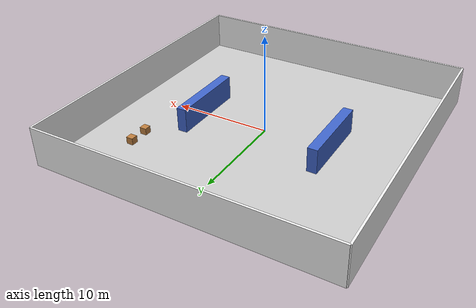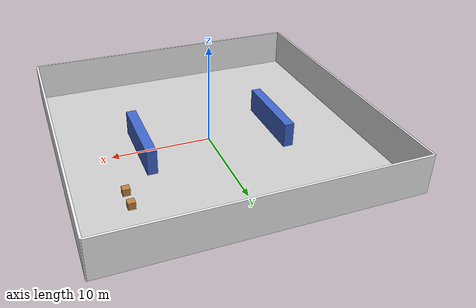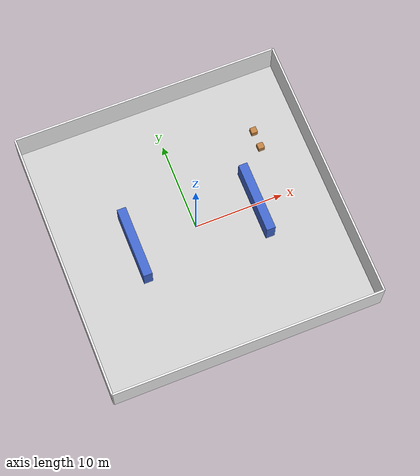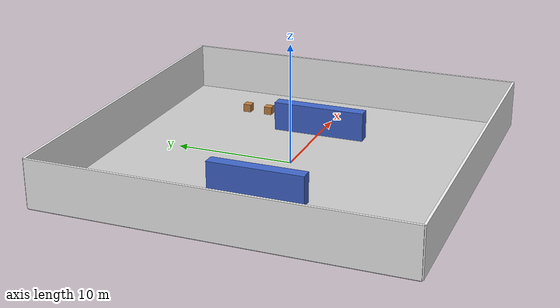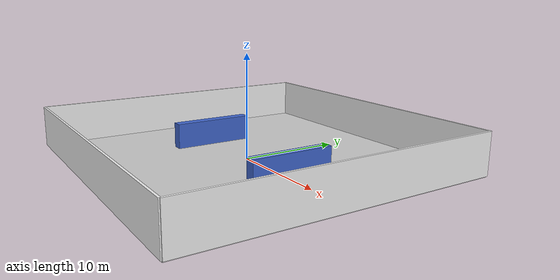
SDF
<?xml version="1.0" ?>
<sdf version="1.7">

<world name="warehouse_world">

  <!-- ================= LIGHTING ================= -->

  <scene>
    <ambient>0.7 0.7 0.7 1</ambient>
    <background>0.85 0.88 0.92 1</background>
    <shadows>true</shadows>
  </scene>

  <light name="sun_light" type="directional">
    <cast_shadows>true</cast_shadows>
    <pose>0 0 20 0 0 0</pose>
    <diffuse>1 1 1 1</diffuse>
    <specular>0.2 0.2 0.2 1</specular>
    <direction>-0.5 0.1 -0.9</direction>
  </light>

  <!-- ================= FLOOR ================= -->

  <model name="warehouse_floor">
    <static>true</static>

    <link name="floor_link">

      <collision name="collision">
        <geometry>
          <box>
            <size>30 30 0.1</size>
          </box>
        </geometry>
      </collision>

      <visual name="visual">
        <geometry>
          <box>
            <size>30 30 0.1</size>
          </box>
        </geometry>

        <material>
          <ambient>0.75 0.75 0.75 1</ambient>
          <diffuse>0.8 0.8 0.8 1</diffuse>
          <specular>0.1 0.1 0.1 1</specular>
        </material>

      </visual>

    </link>

    <pose>0 0 -0.05 0 0 0</pose>
  </model>

  <!-- ================= WALLS ================= -->

  <!-- Back Wall -->
  <model name="back_wall">
    <static>true</static>

    <link name="link">

      <collision name="collision">
        <geometry>
          <box>
            <size>30 0.2 4</size>
          </box>
        </geometry>
      </collision>

      <visual name="visual">
        <geometry>
          <box>
            <size>30 0.2 4</size>
          </box>
        </geometry>

        <material>
          <ambient>0.92 0.92 0.92 1</ambient>
          <diffuse>0.95 0.95 0.95 1</diffuse>
        </material>

      </visual>

    </link>

    <pose>0 -15 2 0 0 0</pose>
  </model>

  <!-- Front Wall -->
  <model name="front_wall">
    <static>true</static>

    <link name="link">

      <collision name="collision">
        <geometry>
          <box>
            <size>30 0.2 4</size>
          </box>
        </geometry>
      </collision>

      <visual name="visual">
        <geometry>
          <box>
            <size>30 0.2 4</size>
          </box>
        </geometry>

        <material>
          <ambient>0.92 0.92 0.92 1</ambient>
          <diffuse>0.95 0.95 0.95 1</diffuse>
        </material>

      </visual>

    </link>

    <pose>0 15 2 0 0 0</pose>
  </model>

  <!-- Left Wall -->
  <model name="left_wall">
    <static>true</static>

    <link name="link">

      <collision name="collision">
        <geometry>
          <box>
            <size>0.2 30 4</size>
          </box>
        </geometry>
      </collision>

      <visual name="visual">
        <geometry>
          <box>
            <size>0.2 30 4</size>
          </box>
        </geometry>

        <material>
          <ambient>0.92 0.92 0.92 1</ambient>
          <diffuse>0.95 0.95 0.95 1</diffuse>
        </material>

      </visual>

    </link>

    <pose>-15 0 2 0 0 0</pose>
  </model>

  <!-- Right Wall -->
  <model name="right_wall">
    <static>true</static>

    <link name="link">

      <collision name="collision">
        <geometry>
          <box>
            <size>0.2 30 4</size>
          </box>
        </geometry>
      </collision>

      <visual name="visual">
        <geometry>
          <box>
            <size>0.2 30 4</size>
          </box>
        </geometry>

        <material>
          <ambient>0.92 0.92 0.92 1</ambient>
          <diffuse>0.95 0.95 0.95 1</diffuse>
        </material>

      </visual>

    </link>

    <pose>15 0 2 0 0 0</pose>
  </model>

  <!-- ================= SHELVES ================= -->

  <!-- Left Shelf -->
  <model name="shelf_left">
    <static>true</static>

    <link name="link">

      <collision name="collision">
        <geometry>
          <box>
            <size>1 8 2.5</size>
          </box>
        </geometry>
      </collision>

      <visual name="visual">
        <geometry>
          <box>
            <size>1 8 2.5</size>
          </box>
        </geometry>

        <material>
          <ambient>0.2 0.35 0.7 1</ambient>
          <diffuse>0.25 0.4 0.8 1</diffuse>
        </material>

      </visual>

    </link>

    <pose>-7 0 1.25 0 0 0</pose>
  </model>

  <!-- Right Shelf -->
  <model name="shelf_right">
    <static>true</static>

    <link name="link">

      <collision name="collision">
        <geometry>
          <box>
            <size>1 8 2.5</size>
          </box>
        </geometry>
      </collision>

      <visual name="visual">
        <geometry>
          <box>
            <size>1 8 2.5</size>
          </box>
        </geometry>

        <material>
          <ambient>0.2 0.35 0.7 1</ambient>
          <diffuse>0.25 0.4 0.8 1</diffuse>
        </material>

      </visual>

    </link>

    <pose>7 0 1.25 0 0 0</pose>
  </model>

  <!-- ================= BOXES ================= -->

  <model name="cargo_box_1">
    <static>true</static>

    <link name="link">

      <collision name="collision">
        <geometry>
          <box>
            <size>0.7 0.7 0.7</size>
          </box>
        </geometry>
      </collision>

      <visual name="visual">
        <geometry>
          <box>
            <size>0.7 0.7 0.7</size>
          </box>
        </geometry>

        <material>
          <ambient>0.7 0.45 0.2 1</ambient>
          <diffuse>0.75 0.5 0.25 1</diffuse>
        </material>

      </visual>

    </link>

    <pose>10 6 0.35 0 0 0</pose>
  </model>

  <model name="cargo_box_2">
    <static>true</static>

    <link name="link">

      <collision name="collision">
        <geometry>
          <box>
            <size>0.7 0.7 0.7</size>
          </box>
        </geometry>
      </collision>

      <visual name="visual">
        <geometry>
          <box>
            <size>0.7 0.7 0.7</size>
          </box>
        </geometry>

        <material>
          <ambient>0.7 0.45 0.2 1</ambient>
          <diffuse>0.75 0.5 0.25 1</diffuse>
        </material>

      </visual>

    </link>

    <pose>10 8 0.35 0 0 0</pose>
  </model>

</world>
</sdf>
